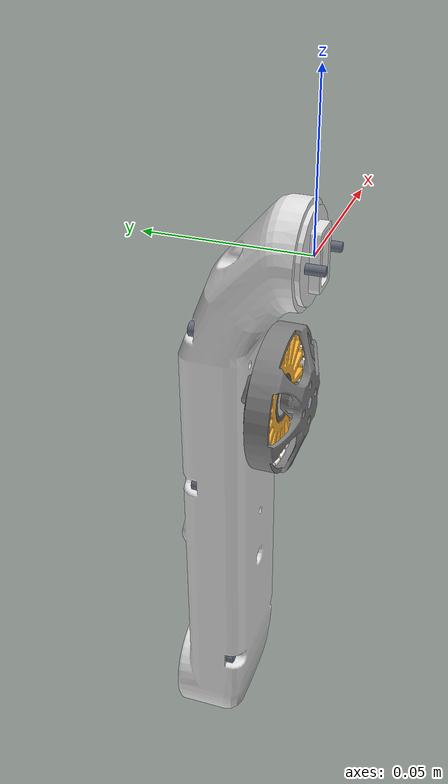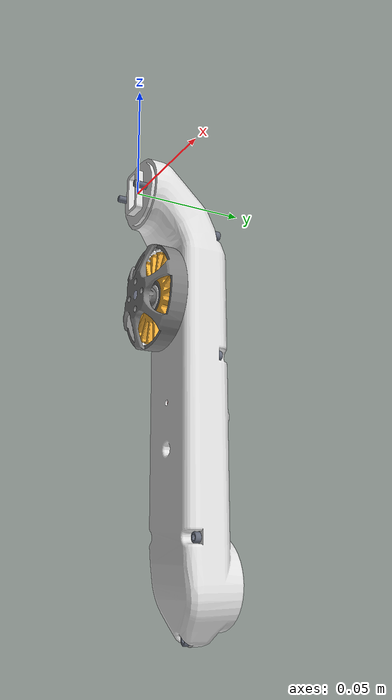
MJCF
<mujoco model="solo_upper_leg_left_side">
  <default>
    <default class="visual">
      <geom group="2" type="mesh" contype="0" conaffinity="0"/>
    </default>
    <default class="collision">
      <geom group="3" type="mesh"/>
    </default>
  </default>
  <asset>
    <material name="material_0" specular="1.0" shininess="0.0" rgba="0.403922 0.427451 0.486275 1.0"/>
    <material name="material_1" specular="1.0" shininess="0.0" rgba="0.894118 0.894118 0.894118 1.0"/>
    <material name="material_2" specular="1.0" shininess="0.0" rgba="0.247059 0.247059 0.247059 1.0"/>
    <material name="material_3" specular="1.0" shininess="0.0" rgba="1.000000 0.619608 0.639216 1.0"/>
    <material name="material_4" specular="1.0" shininess="0.0" rgba="0.654902 0.819608 1.000000 1.0"/>
    <material name="material_5" specular="1.0" shininess="0.0" rgba="1.000000 0.501961 0.501961 1.0"/>
    <material name="material_6" specular="1.0" shininess="0.0" rgba="0.749020 1.000000 1.000000 1.0"/>
    <material name="material_7" specular="1.0" shininess="0.0" rgba="0.501961 0.501961 0.501961 1.0"/>
    <material name="material_8" specular="1.0" shininess="0.0" rgba="0.592157 0.603922 0.709804 1.0"/>
    <material name="material_9" specular="1.0" shininess="0.0" rgba="0.749020 1.000000 0.749020 1.0"/>
    <material name="material_10" specular="1.0" shininess="0.0" rgba="0.792157 0.819608 0.929412 1.0"/>
    <material name="material_11" specular="1.0" shininess="0.0" rgba="0.858824 0.858824 0.858824 1.0"/>
    <material name="material_12" specular="1.0" shininess="0.0" rgba="0.376471 0.376471 0.376471 1.0"/>
    <material name="material_13" specular="1.0" shininess="0.0" rgba="1.000000 0.713726 0.219608 1.0"/>
    <material name="material_14" specular="1.0" shininess="0.0" rgba="0.949020 0.949020 0.949020 1.0"/>
    <material name="material_15" specular="1.0" shininess="0.0" rgba="1.000000 1.000000 1.000000 1.0"/>
    <material name="material_16" specular="1.0" shininess="0.0" rgba="1.000000 1.000000 0.000000 1.0"/>
    <material name="material_17" specular="1.0" shininess="0.0" rgba="0.956863 1.000000 0.403922 1.0"/>
    <material name="material_18" specular="1.0" shininess="0.0" rgba="0.992157 1.000000 0.494118 1.0"/>
    <material name="material_19" specular="1.0" shininess="0.0" rgba="1.000000 1.000000 0.501961 1.0"/>
    <mesh file="solo_upper_leg_left_side_0.obj"/>
    <mesh file="solo_upper_leg_left_side_1.obj"/>
    <mesh file="solo_upper_leg_left_side_2.obj"/>
    <mesh file="solo_upper_leg_left_side_3.obj"/>
    <mesh file="solo_upper_leg_left_side_4.obj"/>
    <mesh file="solo_upper_leg_left_side_5.obj"/>
    <mesh file="solo_upper_leg_left_side_6.obj"/>
    <mesh file="solo_upper_leg_left_side_7.obj"/>
    <mesh file="solo_upper_leg_left_side_8.obj"/>
    <mesh file="solo_upper_leg_left_side_9.obj"/>
    <mesh file="solo_upper_leg_left_side_10.obj"/>
    <mesh file="solo_upper_leg_left_side_11.obj"/>
    <mesh file="solo_upper_leg_left_side_12.obj"/>
    <mesh file="solo_upper_leg_left_side_13.obj"/>
    <mesh file="solo_upper_leg_left_side_14.obj"/>
    <mesh file="solo_upper_leg_left_side_15.obj"/>
    <mesh file="solo_upper_leg_left_side_16.obj"/>
    <mesh file="solo_upper_leg_left_side_17.obj"/>
    <mesh file="solo_upper_leg_left_side_18.obj"/>
    <mesh file="solo_upper_leg_left_side_19.obj"/>
  </asset>
  <worldbody>
    <body name="solo_upper_leg_left_side">
      <geom mesh="solo_upper_leg_left_side_0" material="material_19" class="visual"/>
      <geom mesh="solo_upper_leg_left_side_1" material="material_18" class="visual"/>
      <geom mesh="solo_upper_leg_left_side_2" material="material_17" class="visual"/>
      <geom mesh="solo_upper_leg_left_side_3" material="material_16" class="visual"/>
      <geom mesh="solo_upper_leg_left_side_4" material="material_15" class="visual"/>
      <geom mesh="solo_upper_leg_left_side_5" material="material_14" class="visual"/>
      <geom mesh="solo_upper_leg_left_side_6" material="material_13" class="visual"/>
      <geom mesh="solo_upper_leg_left_side_7" material="material_12" class="visual"/>
      <geom mesh="solo_upper_leg_left_side_8" material="material_11" class="visual"/>
      <geom mesh="solo_upper_leg_left_side_9" material="material_10" class="visual"/>
      <geom mesh="solo_upper_leg_left_side_10" material="material_9" class="visual"/>
      <geom mesh="solo_upper_leg_left_side_11" material="material_8" class="visual"/>
      <geom mesh="solo_upper_leg_left_side_12" material="material_7" class="visual"/>
      <geom mesh="solo_upper_leg_left_side_13" material="material_6" class="visual"/>
      <geom mesh="solo_upper_leg_left_side_14" material="material_5" class="visual"/>
      <geom mesh="solo_upper_leg_left_side_15" material="material_4" class="visual"/>
      <geom mesh="solo_upper_leg_left_side_16" material="material_3" class="visual"/>
      <geom mesh="solo_upper_leg_left_side_17" material="material_2" class="visual"/>
      <geom mesh="solo_upper_leg_left_side_18" material="material_1" class="visual"/>
      <geom mesh="solo_upper_leg_left_side_19" material="material_0" class="visual"/>
      <geom mesh="solo_upper_leg_left_side_0" class="collision"/>
      <geom mesh="solo_upper_leg_left_side_1" class="collision"/>
      <geom mesh="solo_upper_leg_left_side_2" class="collision"/>
      <geom mesh="solo_upper_leg_left_side_3" class="collision"/>
      <geom mesh="solo_upper_leg_left_side_4" class="collision"/>
      <geom mesh="solo_upper_leg_left_side_5" class="collision"/>
      <geom mesh="solo_upper_leg_left_side_6" class="collision"/>
      <geom mesh="solo_upper_leg_left_side_7" class="collision"/>
      <geom mesh="solo_upper_leg_left_side_8" class="collision"/>
      <geom mesh="solo_upper_leg_left_side_9" class="collision"/>
      <geom mesh="solo_upper_leg_left_side_10" class="collision"/>
      <geom mesh="solo_upper_leg_left_side_11" class="collision"/>
      <geom mesh="solo_upper_leg_left_side_12" class="collision"/>
      <geom mesh="solo_upper_leg_left_side_13" class="collision"/>
      <geom mesh="solo_upper_leg_left_side_14" class="collision"/>
      <geom mesh="solo_upper_leg_left_side_15" class="collision"/>
      <geom mesh="solo_upper_leg_left_side_16" class="collision"/>
      <geom mesh="solo_upper_leg_left_side_17" class="collision"/>
      <geom mesh="solo_upper_leg_left_side_18" class="collision"/>
      <geom mesh="solo_upper_leg_left_side_19" class="collision"/>
    </body>
  </worldbody>
</mujoco>
